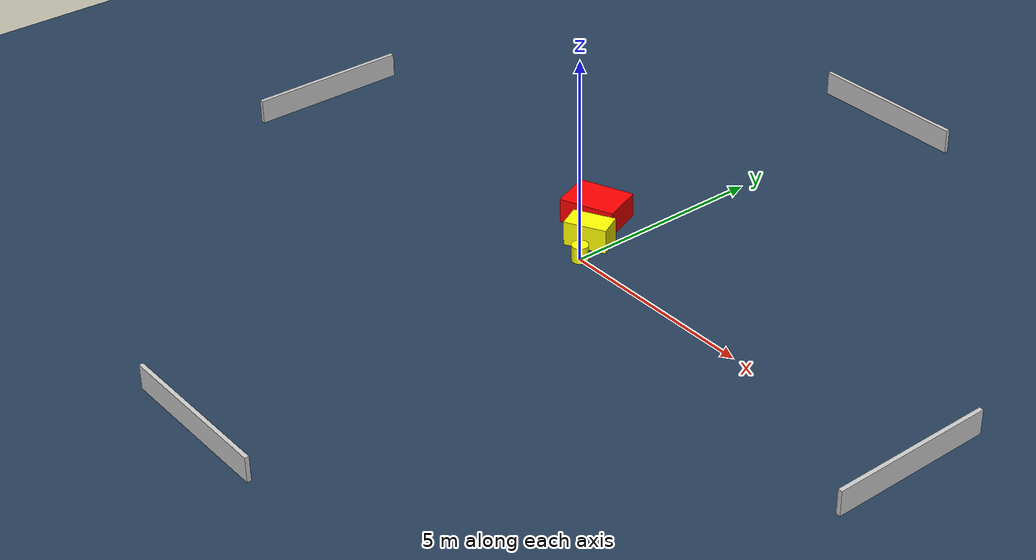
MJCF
<?xml version="1.0" ?>
<mujoco model="generated_environment">
  <option timestep="0.01" integrator="RK4" cone="elliptic"/>
  <default>
    <geom density="1"/>
  </default>
  <asset>
    <texture builtin="gradient" height="3072" name="skybox" rgb1="0.3 0.5 0.7" rgb2="0 0 0" type="skybox" width="512"/>
    <texture builtin="checker" height="300" name="groundplane" rgb1="0.2 0.3 0.4" rgb2="0.1 0.2 0.3" type="2d" width="300"/>
    <material name="groundplane" reflectance="0.2" texrepeat="5 5" texture="groundplane"/>
  </asset>
  <worldbody>
    <light dir="0 0 -1" directional="true" pos="0 0 1.5"/>
    <geom condim="3" friction="0.5 0.005 0.001" material="groundplane" name="floor" pos="0 0 0" size="0 0 0.05" type="plane"/>
    <body name="walls">
      <geom name="wall_1" condim="4" pos="-10.0 0.0 0.3" rgba="0.800000011920929 0.800000011920929 0.800000011920929 1.0" size="0.05 2.0 0.3" type="box"/>
      <geom name="wall_2" condim="4" pos="10.0 0.0 0.3" rgba="0.800000011920929 0.800000011920929 0.800000011920929 1.0" size="0.05 2.0 0.3" type="box"/>
      <geom name="wall_3" condim="4" pos="0.0 -10.0 0.3" rgba="0.800000011920929 0.800000011920929 0.800000011920929 1.0" size="2.0 0.05 0.3" type="box"/>
      <geom name="wall_4" condim="4" pos="0.0 10.0 0.3" rgba="0.800000011920929 0.800000011920929 0.800000011920929 1.0" size="2.0 0.05 0.3" type="box"/>
    </body>
    <body name="robot">
      <joint name="joint_x" type="slide" pos="0 0 0" axis="1 0 0"/>
      <joint name="joint_y" type="slide" pos="0 0 0" axis="0 1 0"/>
      <geom name="robot" type="cylinder" pos="0.0 0.0 0.2" size="0.2 0.2 0.0" mass="5.0" friction="1.0 0.005 0.0001" condim="4" rgba="1.0 1.0 0.0 1.0"/>
    </body>
    <body name="obstacle_1_movable">
      <geom name="obstacle_1_movable" condim="4" pos="-0.41097983393340637 0.6299200007509952 0.3" euler="0 0 297.1868432807413" friction="0.0 0.005 0.001" rgba="1.0 1.0 0.0 1.0" size="0.3013081058958835 0.5172810408521312 0.3" type="box" mass="0.1"/>
      <joint type="free"/>
    </body>
    <body name="obstacle_2_static">
      <geom name="obstacle_2_static" condim="4" pos="-1.1064163749199847 1.4245033880707818 0.3" euler="0 0 111.32876172874832" friction="0.0 0.005 0.001" rgba="1.0 0.0 0.0 1.0" size="0.5103800276673529 0.6844722522334066 0.3" type="box"/>
    </body>
  </worldbody>
  <actuator>
    <motor name="actuator_x" joint="joint_x" gear="1" ctrlrange="-1 1"/>
    <motor name="actuator_y" joint="joint_y" gear="1" ctrlrange="-1 1"/>
  </actuator>
</mujoco>
